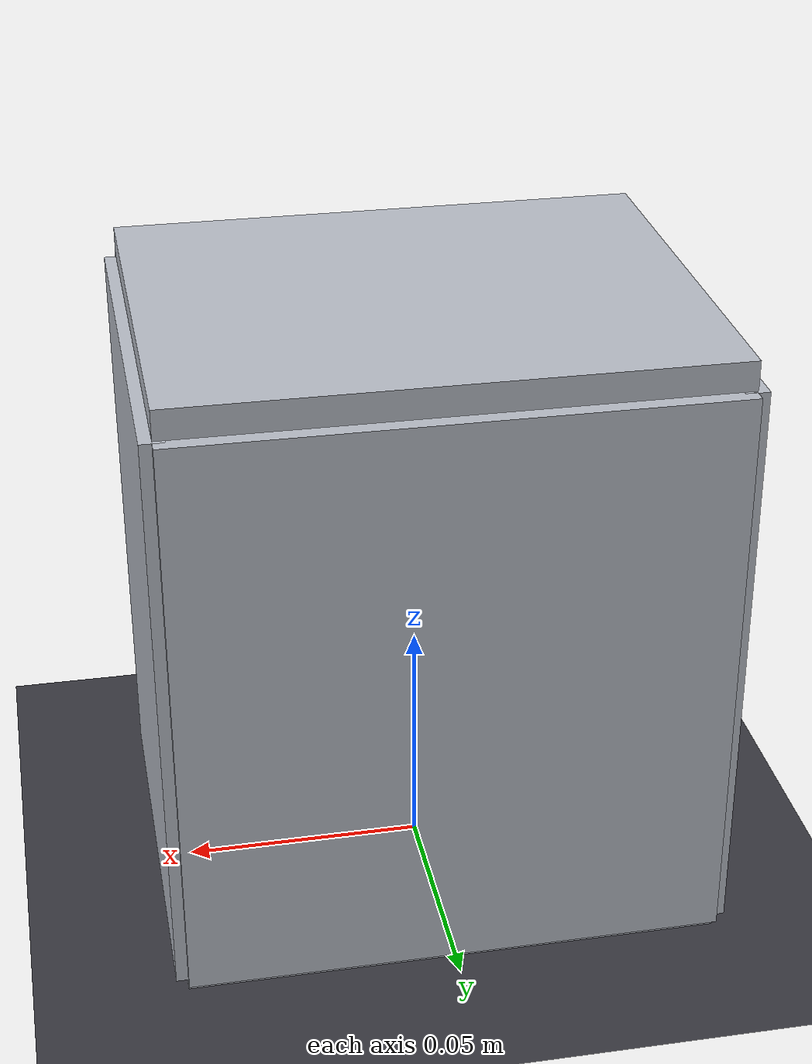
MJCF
<mujoco model="assy_latch">
  <compiler angle="degree"/>
  <option timestep="0.0002" gravity="0 0 -9.81" integrator="implicitfast" cone="elliptic"/>
  <visual><global offwidth="960" offheight="720"/></visual>
  <default>
    <geom rgba="0.72 0.74 0.78 1" friction="0.35 0.005 0.0001" solref="0.002 1"/>
  </default>
  <worldbody>
    <light pos="0.25 -0.35 0.35" dir="-0.3 0.5 -1" diffuse="0.95 0.95 0.95"/>
    <camera name="iso" pos="0.26 -0.26 0.20" xyaxes="0.7 0.7 0 -0.35 0.35 0.87"/>
    <camera name="latch_closeup" pos="0.035 -0.02 0.08160"
            xyaxes="0 1 0 -0.5 0 0.87"/>
    <camera name="section" pos="0.30 0 0.08400" xyaxes="0 1 0 0 0 1"/>
    <geom name="ground" type="plane" size="1 1 0.01" rgba="0.22 0.22 0.25 1"/>

    <body name="box_body" pos="0 0 0">
      <geom name="floor" type="box" size="0.05500 0.04500 0.00240" pos="0 0 0.00240"
            contype="1" conaffinity="1"/>
      <geom name="wall_left" type="box" size="0.00240 0.04500 0.06000"
            pos="-0.05500 0 0.06240" contype="1" conaffinity="1"/>
      <geom name="wall_right" type="box" size="0.00240 0.04500 0.06000"
            pos="0.05500 0 0.06240" contype="1" conaffinity="1"/>
      <geom name="wall_rear" type="box" size="0.05500 0.00240 0.06000"
            pos="0 -0.04500 0.06240" contype="1" conaffinity="1"/>
      <geom name="wall_front" type="box" size="0.05500 0.00240 0.06000"
            pos="0 0.04500 0.06240" contype="1" conaffinity="1"/>

      <body name="snap_beam" pos="0 0.04200 0.05880">
        <joint name="beam_flex" type="hinge" axis="1 0 0" range="-35 2"
               stiffness="0.75600" damping="0.003935" armature="2.000e-06"
               springref="0"/>
        <geom name="beam" type="box"
              size="0.00300 0.00060 0.00600"
              pos="0 0 0.00600" mass="0.0004" rgba="0.30 0.62 0.85 1"
              contype="4" conaffinity="4"/>
        <geom name="hook" type="box"
              size="0.00300 0.00040 0.0008"
              pos="0 -0.00100 0.01080" mass="0.0001"
              rgba="0.95 0.55 0.15 1" contype="4" conaffinity="4"/>
      </body>
    </body>

    <body name="lid" pos="0 -0.04500 0.12580">
      <joint name="lid_hinge" type="hinge" axis="1 0 0" range="-1 105.0" damping="0.0015"/>
      <geom name="lid_plate" type="box" size="0.05500 0.04500 0.00300"
            pos="0 0.04500 0" mass="0.05" contype="2" conaffinity="2"/>
      <geom name="lid_rib" type="box"
            size="0.00300 0.00060 0.03040"
            pos="0 0.08490 -0.02870" mass="0.003"
            rgba="0.55 0.78 0.55 1" contype="4" conaffinity="4"/>
      <geom name="lid_lip" type="box"
            size="0.00300 0.00040 0.00090"
            pos="0 0.08590 -0.05810" mass="0.001"
            rgba="0.35 0.68 0.35 1" contype="4" conaffinity="4"/>
    </body>
  </worldbody>

  <actuator>
    <position name="lid_drive" joint="lid_hinge" kp="0.5" ctrlrange="-1 105.0"
              forcerange="-2.5 2.5"/>
    <position name="beam_release" joint="beam_flex" kp="3.024" ctrlrange="-35 0"
              forcerange="-1.583 1.583"/>
  </actuator>
</mujoco>
